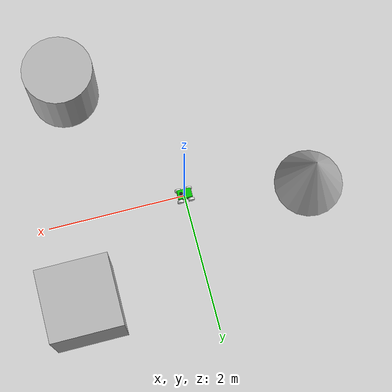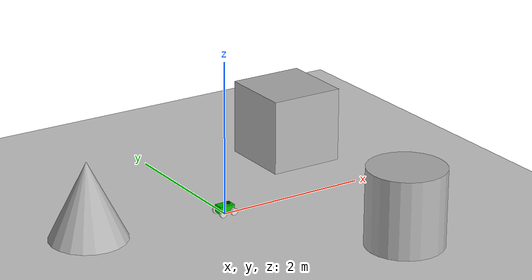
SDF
<sdf version='1.10'>
  <world name='empty'>
    <physics name='1ms' type='ignored'>
      <max_step_size>0.001</max_step_size>
      <real_time_factor>1</real_time_factor>
      <real_time_update_rate>1000</real_time_update_rate>
    </physics>
    <plugin name='gz::sim::systems::Physics' filename='gz-sim-physics-system'/>
    <plugin name='gz::sim::systems::UserCommands' filename='gz-sim-user-commands-system'/>
    <plugin name='gz::sim::systems::SceneBroadcaster' filename='gz-sim-scene-broadcaster-system'/>
    <plugin name='gz::sim::systems::Sensors' filename='gz-sim-sensors-system'>
      <render_engine>ogre2</render_engine>
    </plugin>
    <plugin name='gz::sim::systems::Contact' filename='gz-sim-contact-system'/>
    <gravity>0 0 -9.8000000000000007</gravity>
    <magnetic_field>5.5644999999999998e-06 2.2875799999999999e-05 -4.2388400000000002e-05</magnetic_field>
    <atmosphere type='adiabatic'/>
    <scene>
      <ambient>0.400000006 0.400000006 0.400000006 1</ambient>
      <background>0.699999988 0.699999988 0.699999988 1</background>
      <shadows>true</shadows>
    </scene>
    <model name='ground_plane'>
      <static>true</static>
      <link name='link'>
        <collision name='collision'>
          <geometry>
            <plane>
              <normal>0 0 1</normal>
              <size>100 100</size>
            </plane>
          </geometry>
          <surface>
            <friction>
              <ode/>
            </friction>
            <bounce/>
            <contact/>
          </surface>
        </collision>
        <visual name='visual'>
          <geometry>
            <plane>
              <normal>0 0 1</normal>
              <size>100 100</size>
            </plane>
          </geometry>
          <material>
            <ambient>0.800000012 0.800000012 0.800000012 1</ambient>
            <diffuse>0.800000012 0.800000012 0.800000012 1</diffuse>
            <specular>0.800000012 0.800000012 0.800000012 1</specular>
          </material>
        </visual>
        <pose>0 0 0 0 0 0</pose>
        <inertial>
          <pose>0 0 0 0 0 0</pose>
          <mass>1</mass>
          <inertia>
            <ixx>1</ixx>
            <ixy>0</ixy>
            <ixz>0</ixz>
            <iyy>1</iyy>
            <iyz>0</iyz>
            <izz>1</izz>
          </inertia>
        </inertial>
        <enable_wind>false</enable_wind>
      </link>
      <pose>0 0 0 0 0 0</pose>
      <self_collide>false</self_collide>
    </model>
    <model name='sucata'>
      <link name='base_link'>
        <inertial>
          <pose>0.02178571428571429 0 0.062857142857142861 0 0 0</pose>
          <mass>0.69999999999999996</mass>
          <inertia>
            <ixx>0.0025861607142857149</ixx>
            <ixy>0</ixy>
            <ixz>-0.00041142857142857159</ixz>
            <iyy>0.0045462202380952381</iyy>
            <iyz>0</iyz>
            <izz>0.0046038095238095239</izz>
          </inertia>
        </inertial>
        <collision name='base_link_collision'>
          <pose>0 0 0.050000000000000003 0 0 0</pose>
          <geometry>
            <box>
              <size>0.20499999999999999 0.13500000000000001 0.10000000000000001</size>
            </box>
          </geometry>
          <surface>
            <friction>
              <ode/>
            </friction>
            <bounce/>
            <contact/>
          </surface>
        </collision>
        <collision name='base_link_fixed_joint_lump__lidar_collision_1'>
          <pose>0.050000000000000003 0 0.11 0 0 0</pose>
          <geometry>
            <cylinder>
              <length>0.02</length>
              <radius>0.025000000000000001</radius>
            </cylinder>
          </geometry>
          <surface>
            <contact>
              <ode/>
            </contact>
            <friction>
              <ode/>
            </friction>
            <bounce/>
          </surface>
        </collision>
        <visual name='base_link_visual'>
          <pose>0 0 0.050000000000000003 0 0 0</pose>
          <geometry>
            <box>
              <size>0.20499999999999999 0.13500000000000001 0.10000000000000001</size>
            </box>
          </geometry>
          <material>
            <diffuse>0 0.75000006 0 1</diffuse>
            <ambient>0 0.75000006 0 1</ambient>
          </material>
        </visual>
        <visual name='base_link_fixed_joint_lump__camera_link_visual_1'>
          <pose>0.10249999999999999 0 0.080000000000000002 0 0 0</pose>
          <geometry>
            <box>
              <size>0.01 0.029999999999999999 0.029999999999999999</size>
            </box>
          </geometry>
          <material>
            <script>
              <name>Gazebo/Red</name>
              <uri>file://media/materials/scripts/gazebo.material</uri>
            </script>
          </material>
        </visual>
        <visual name='base_link_fixed_joint_lump__lidar_visual_2'>
          <pose>0.050000000000000003 0 0.11 0 0 0</pose>
          <geometry>
            <cylinder>
              <length>0.02</length>
              <radius>0.025000000000000001</radius>
            </cylinder>
          </geometry>
          <material>
            <script>
              <name>Gazebo/Black</name>
              <uri>file://media/materials/scripts/gazebo.material</uri>
            </script>
            <diffuse>0.875 0.875 0.875 1</diffuse>
            <ambient>0.875 0.875 0.875 1</ambient>
          </material>
        </visual>
        <sensor name='camera' type='camera'>
          <pose>0.10249999999999999 0 0.080000000000000002 0 0 0</pose>
          <topic>camera/image_raw</topic>
          <update_rate>10</update_rate>
          <enable_metrics>false</enable_metrics>
          <camera name='__default__'>
            <pose>0 0 0 0 0 0</pose>
            <horizontal_fov>1.089</horizontal_fov>
            <image>
              <width>640</width>
              <height>480</height>
              <format>RGB_INT8</format>
              <anti_aliasing>4</anti_aliasing>
            </image>
            <camera_info_topic>__default__</camera_info_topic>
            <trigger_topic></trigger_topic>
            <triggered>false</triggered>
            <clip>
              <near>0.050000000000000003</near>
              <far>8</far>
            </clip>
            <save enabled='false'>
              <path>__default__</path>
            </save>
            <visibility_mask>4294967295</visibility_mask>
            <noise>
              <type>none</type>
              <mean>0</mean>
              <stddev>0</stddev>
            </noise>
            <distortion>
              <k1>0</k1>
              <k2>0</k2>
              <k3>0</k3>
              <p1>0</p1>
              <p2>0</p2>
              <center>0.5 0.5</center>
            </distortion>
            <lens>
              <type>stereographic</type>
              <scale_to_hfov>true</scale_to_hfov>
              <cutoff_angle>1.5707963267948966</cutoff_angle>
              <env_texture_size>256</env_texture_size>
            </lens>
            <optical_frame_id></optical_frame_id>
          </camera>
        </sensor>
        <sensor name='laser' type='gpu_lidar'>
          <pose>0.050000000000000003 0 0.11 0 0 0</pose>
          <topic>scan</topic>
          <update_rate>10</update_rate>
          <enable_metrics>false</enable_metrics>
          <lidar>
            <scan>
              <horizontal>
                <samples>360</samples>
                <resolution>1</resolution>
                <min_angle>-3.1400000000000001</min_angle>
                <max_angle>3.1400000000000001</max_angle>
              </horizontal>
              <vertical>
                <samples>1</samples>
                <min_angle>0</min_angle>
                <max_angle>0</max_angle>
                <resolution>1</resolution>
              </vertical>
            </scan>
            <range>
              <min>0.29999999999999999</min>
              <max>12</max>
              <resolution>0</resolution>
            </range>
            <noise>
              <type>none</type>
              <mean>0</mean>
              <stddev>0</stddev>
            </noise>
            <visibility_mask>4294967295</visibility_mask>
          </lidar>
        </sensor>
        <pose>0 0 0 0 0 0</pose>
        <enable_wind>false</enable_wind>
      </link>
      <joint name='base_left_front_wheel_joint' type='revolute'>
        <pose>0 0 0 0 0 0</pose>
        <parent>base_link</parent>
        <child>left_front_wheel</child>
        <axis>
          <xyz>0 1 0</xyz>
          <limit>
            <lower>-inf</lower>
            <upper>inf</upper>
            <effort>inf</effort>
            <velocity>inf</velocity>
            <stiffness>100000000</stiffness>
            <dissipation>1</dissipation>
          </limit>
          <dynamics>
            <spring_reference>0</spring_reference>
            <spring_stiffness>0</spring_stiffness>
            <damping>0</damping>
            <friction>0</friction>
          </dynamics>
        </axis>
      </joint>
      <link name='left_front_wheel'>
        <pose>0.080000000000000002 0.085000000000000034 0.015000000000000003 -2.427846613021677e-30 5.1316613820510416e-17 -6.2294433527933798e-47</pose>
        <inertial>
          <pose>0 0 0 0 0 0</pose>
          <mass>0.10000000000000001</mass>
          <inertia>
            <ixx>6.0833333333333339e-05</ixx>
            <ixy>0</ixy>
            <ixz>0</ixz>
            <iyy>6.0833333333333339e-05</iyy>
            <iyz>0</iyz>
            <izz>0.00010124999999999999</izz>
          </inertia>
        </inertial>
        <collision name='left_front_wheel_collision'>
          <pose>0 0 0 1.5700000000000001 0 0</pose>
          <geometry>
            <cylinder>
              <length>0.035000000000000003</length>
              <radius>0.044999999999999998</radius>
            </cylinder>
          </geometry>
          <surface>
            <friction>
              <ode/>
            </friction>
            <bounce/>
            <contact/>
          </surface>
        </collision>
        <visual name='left_front_wheel_visual'>
          <pose>0 0 0 1.5700000000000001 0 0</pose>
          <geometry>
            <cylinder>
              <length>0.035000000000000003</length>
              <radius>0.044999999999999998</radius>
            </cylinder>
          </geometry>
          <material>
            <diffuse>0.875 0.875 0.875 1</diffuse>
            <ambient>0.875 0.875 0.875 1</ambient>
          </material>
        </visual>
        <enable_wind>false</enable_wind>
      </link>
      <joint name='base_left_rear_wheel_joint' type='revolute'>
        <pose>0 0 0 0 0 0</pose>
        <parent>base_link</parent>
        <child>left_rear_wheel</child>
        <axis>
          <xyz>0 1 0</xyz>
          <limit>
            <lower>-inf</lower>
            <upper>inf</upper>
            <effort>inf</effort>
            <velocity>inf</velocity>
            <stiffness>100000000</stiffness>
            <dissipation>1</dissipation>
          </limit>
          <dynamics>
            <spring_reference>0</spring_reference>
            <spring_stiffness>0</spring_stiffness>
            <damping>0</damping>
            <friction>0</friction>
          </dynamics>
        </axis>
      </joint>
      <link name='left_rear_wheel'>
        <pose>-0.080000000000000002 0.085000000000000006 0.015000000000000003 -2.4026981809197334e-30 5.078506094143894e-17 -1.2621774483536189e-29</pose>
        <inertial>
          <pose>0 0 0 0 0 0</pose>
          <mass>0.10000000000000001</mass>
          <inertia>
            <ixx>6.0833333333333339e-05</ixx>
            <ixy>0</ixy>
            <ixz>0</ixz>
            <iyy>6.0833333333333339e-05</iyy>
            <iyz>0</iyz>
            <izz>0.00010124999999999999</izz>
          </inertia>
        </inertial>
        <collision name='left_rear_wheel_collision'>
          <pose>0 0 0 1.5700000000000001 0 0</pose>
          <geometry>
            <cylinder>
              <length>0.035000000000000003</length>
              <radius>0.044999999999999998</radius>
            </cylinder>
          </geometry>
          <surface>
            <friction>
              <ode/>
            </friction>
            <bounce/>
            <contact/>
          </surface>
        </collision>
        <visual name='left_rear_wheel_visual'>
          <pose>0 0 0 1.5700000000000001 0 0</pose>
          <geometry>
            <cylinder>
              <length>0.035000000000000003</length>
              <radius>0.044999999999999998</radius>
            </cylinder>
          </geometry>
          <material>
            <diffuse>0.875 0.875 0.875 1</diffuse>
            <ambient>0.875 0.875 0.875 1</ambient>
          </material>
        </visual>
        <enable_wind>false</enable_wind>
      </link>
      <joint name='base_right_front_wheel_joint' type='revolute'>
        <pose>0 0 0 0 0 0</pose>
        <parent>base_link</parent>
        <child>right_front_wheel</child>
        <axis>
          <xyz>0 1 0</xyz>
          <limit>
            <lower>-inf</lower>
            <upper>inf</upper>
            <effort>inf</effort>
            <velocity>inf</velocity>
            <stiffness>100000000</stiffness>
            <dissipation>1</dissipation>
          </limit>
          <dynamics>
            <spring_reference>0</spring_reference>
            <spring_stiffness>0</spring_stiffness>
            <damping>0</damping>
            <friction>0</friction>
          </dynamics>
        </axis>
      </joint>
      <link name='right_front_wheel'>
        <pose>0.080000000000000002 -0.084999999999999978 0.015000000000000003 2.6110073467498549e-30 -5.5188023528573401e-17 -1.2621774483536189e-29</pose>
        <inertial>
          <pose>0 0 0 0 0 0</pose>
          <mass>0.10000000000000001</mass>
          <inertia>
            <ixx>6.0833333333333339e-05</ixx>
            <ixy>0</ixy>
            <ixz>0</ixz>
            <iyy>6.0833333333333339e-05</iyy>
            <iyz>0</iyz>
            <izz>0.00010124999999999999</izz>
          </inertia>
        </inertial>
        <collision name='right_front_wheel_collision'>
          <pose>0 0 0 1.5700000000000001 0 0</pose>
          <geometry>
            <cylinder>
              <length>0.035000000000000003</length>
              <radius>0.044999999999999998</radius>
            </cylinder>
          </geometry>
          <surface>
            <friction>
              <ode/>
            </friction>
            <bounce/>
            <contact/>
          </surface>
        </collision>
        <visual name='right_front_wheel_visual'>
          <pose>0 0 0 1.5700000000000001 0 0</pose>
          <geometry>
            <cylinder>
              <length>0.035000000000000003</length>
              <radius>0.044999999999999998</radius>
            </cylinder>
          </geometry>
          <material>
            <diffuse>0.875 0.875 0.875 1</diffuse>
            <ambient>0.875 0.875 0.875 1</ambient>
          </material>
        </visual>
        <enable_wind>false</enable_wind>
      </link>
      <joint name='base_right_rear_wheel_joint' type='revolute'>
        <pose>0 0 0 0 0 0</pose>
        <parent>base_link</parent>
        <child>right_rear_wheel</child>
        <axis>
          <xyz>0 1 0</xyz>
          <limit>
            <lower>-inf</lower>
            <upper>inf</upper>
            <effort>inf</effort>
            <velocity>inf</velocity>
            <stiffness>100000000</stiffness>
            <dissipation>1</dissipation>
          </limit>
          <dynamics>
            <spring_reference>0</spring_reference>
            <spring_stiffness>0</spring_stiffness>
            <damping>0</damping>
            <friction>0</friction>
          </dynamics>
        </axis>
      </joint>
      <link name='right_rear_wheel'>
        <pose>-0.080000000000000002 -0.085000000000000006 0.015000000000000003 2.5319605708519733e-30 -5.351723697804388e-17 -6.7751766944674156e-47</pose>
        <inertial>
          <pose>0 0 0 0 0 0</pose>
          <mass>0.10000000000000001</mass>
          <inertia>
            <ixx>6.0833333333333339e-05</ixx>
            <ixy>0</ixy>
            <ixz>0</ixz>
            <iyy>6.0833333333333339e-05</iyy>
            <iyz>0</iyz>
            <izz>0.00010124999999999999</izz>
          </inertia>
        </inertial>
        <collision name='right_rear_wheel_collision'>
          <pose>0 0 0 1.5700000000000001 0 0</pose>
          <geometry>
            <cylinder>
              <length>0.035000000000000003</length>
              <radius>0.044999999999999998</radius>
            </cylinder>
          </geometry>
          <surface>
            <friction>
              <ode/>
            </friction>
            <bounce/>
            <contact/>
          </surface>
        </collision>
        <visual name='right_rear_wheel_visual'>
          <pose>0 0 0 1.5700000000000001 0 0</pose>
          <geometry>
            <cylinder>
              <length>0.035000000000000003</length>
              <radius>0.044999999999999998</radius>
            </cylinder>
          </geometry>
          <material>
            <diffuse>0.875 0.875 0.875 1</diffuse>
            <ambient>0.875 0.875 0.875 1</ambient>
          </material>
        </visual>
        <enable_wind>false</enable_wind>
      </link>
      <plugin name='gz_ros2_control::GazeboSimROS2ControlPlugin' filename='libgz_ros2_control-system.so'>
        <parameters>/home/guilassas24/ros2_ws/install/sucata/share/sucata/config/my_controller.yaml</parameters>
        <controller_manager_name>controller_manager</controller_manager_name>
      </plugin>
      <frame name='base_footprint_joint' attached_to='base_link'>
        <pose>0 0 0 0 0 0</pose>
      </frame>
      <frame name='base_footprint' attached_to='base_footprint_joint'>
        <pose>0 0 0 0 0 0</pose>
      </frame>
      <frame name='camera_optical_joint' attached_to='camera_link'>
        <pose>0 0 0 -1.5707963267948959 -5.5511151231257827e-17 -1.5707963267948959</pose>
      </frame>
      <frame name='camera_link_optical' attached_to='camera_optical_joint'>
        <pose>0 0 0 0 0 0</pose>
      </frame>
      <frame name='camera_joint' attached_to='base_link'>
        <pose>0.10249999999999999 0 0.080000000000000002 0 0 0</pose>
      </frame>
      <frame name='camera_link' attached_to='camera_joint'>
        <pose>0 0 0 0 0 0</pose>
      </frame>
      <frame name='lidar_joint' attached_to='base_link'>
        <pose>0.050000000000000003 0 0.11 0 0 0</pose>
      </frame>
      <frame name='lidar' attached_to='lidar_joint'>
        <pose>0 0 0 0 0 0</pose>
      </frame>
      <pose>2.1621211302144775e-10 -1.1306174464690826e-10 0.030013086224853991 3.7669618228831833e-09 7.2224816490373716e-09 -9.4595038052460619e-14</pose>
      <static>false</static>
      <self_collide>false</self_collide>
    </model>
    <model name='box'>
      <pose>1.7509439024574167 1.2493411962078598 0.49999999990199806 6.2287739151293738e-22 9.3279666454713669e-22 -3.6315533669320137e-22</pose>
      <link name='box_link'>
        <inertial>
          <inertia>
            <ixx>0.16666</ixx>
            <ixy>0</ixy>
            <ixz>0</ixz>
            <iyy>0.16666</iyy>
            <iyz>0</iyz>
            <izz>0.16666</izz>
          </inertia>
          <mass>1</mass>
          <pose>0 0 0 0 0 0</pose>
        </inertial>
        <collision name='box_collision'>
          <geometry>
            <box>
              <size>1 1 1</size>
            </box>
          </geometry>
          <surface>
            <friction>
              <ode/>
            </friction>
            <bounce/>
            <contact/>
          </surface>
        </collision>
        <visual name='box_visual'>
          <geometry>
            <box>
              <size>1 1 1</size>
            </box>
          </geometry>
          <material>
            <ambient>0.300000012 0.300000012 0.300000012 1</ambient>
            <diffuse>0.699999988 0.699999988 0.699999988 1</diffuse>
            <specular>1 1 1 1</specular>
          </material>
        </visual>
        <pose>0 0 0 0 0 0</pose>
        <enable_wind>false</enable_wind>
      </link>
      <static>false</static>
      <self_collide>false</self_collide>
    </model>
    <model name='cone'>
      <pose>-1.7889992545019626 0.26015043447266883 0.49999999993296756 5.2541471503228405e-17 -7.7132841033694056e-10 -2.8937183272912105e-22</pose>
      <link name='cone_link'>
        <inertial>
          <inertia>
            <ixx>0.074999999999999997</ixx>
            <ixy>0</ixy>
            <ixz>0</ixz>
            <iyy>0.074999999999999997</iyy>
            <iyz>0</iyz>
            <izz>0.074999999999999997</izz>
          </inertia>
          <mass>1</mass>
          <pose>0 0 0 0 0 0</pose>
        </inertial>
        <collision name='cone_collision'>
          <geometry>
            <cone>
              <radius>0.5</radius>
              <length>1</length>
            </cone>
          </geometry>
          <surface>
            <friction>
              <ode/>
            </friction>
            <bounce/>
            <contact/>
          </surface>
        </collision>
        <visual name='cone_visual'>
          <geometry>
            <cone>
              <radius>0.5</radius>
              <length>1</length>
            </cone>
          </geometry>
          <material>
            <ambient>0.300000012 0.300000012 0.300000012 1</ambient>
            <diffuse>0.699999988 0.699999988 0.699999988 1</diffuse>
            <specular>1 1 1 1</specular>
          </material>
        </visual>
        <pose>0 0 0 0 0 0</pose>
        <enable_wind>false</enable_wind>
      </link>
      <static>false</static>
      <self_collide>false</self_collide>
    </model>
    <model name='cylinder'>
      <pose>1.3375298649124936 -1.9400935388867615 0.49999942638036005 -4.3361760871588193e-20 6.09388325266005e-19 2.1052028277643034e-21</pose>
      <link name='cylinder_link'>
        <inertial>
          <inertia>
            <ixx>0.14580000000000001</ixx>
            <ixy>0</ixy>
            <ixz>0</ixz>
            <iyy>0.14580000000000001</iyy>
            <iyz>0</iyz>
            <izz>0.125</izz>
          </inertia>
          <mass>1</mass>
          <pose>0 0 0 0 0 0</pose>
        </inertial>
        <collision name='cylinder_collision'>
          <geometry>
            <cylinder>
              <radius>0.5</radius>
              <length>1</length>
            </cylinder>
          </geometry>
          <surface>
            <friction>
              <ode/>
            </friction>
            <bounce/>
            <contact/>
          </surface>
        </collision>
        <visual name='cylinder_visual'>
          <geometry>
            <cylinder>
              <radius>0.5</radius>
              <length>1</length>
            </cylinder>
          </geometry>
          <material>
            <ambient>0.300000012 0.300000012 0.300000012 1</ambient>
            <diffuse>0.699999988 0.699999988 0.699999988 1</diffuse>
            <specular>1 1 1 1</specular>
          </material>
        </visual>
        <pose>0 0 0 0 0 0</pose>
        <enable_wind>false</enable_wind>
      </link>
      <static>false</static>
      <self_collide>false</self_collide>
    </model>
    <light name='sun' type='directional'>
      <pose>0 0 10 0 0 0</pose>
      <cast_shadows>true</cast_shadows>
      <intensity>1</intensity>
      <direction>-0.5 0.10000000000000001 -0.90000000000000002</direction>
      <diffuse>0.800000012 0.800000012 0.800000012 1</diffuse>
      <specular>0.200000003 0.200000003 0.200000003 1</specular>
      <attenuation>
        <range>1000</range>
        <linear>0.01</linear>
        <constant>0.90000000000000002</constant>
        <quadratic>0.001</quadratic>
      </attenuation>
      <spot>
        <inner_angle>0</inner_angle>
        <outer_angle>0</outer_angle>
        <falloff>0</falloff>
      </spot>
    </light>
  </world>
</sdf>
